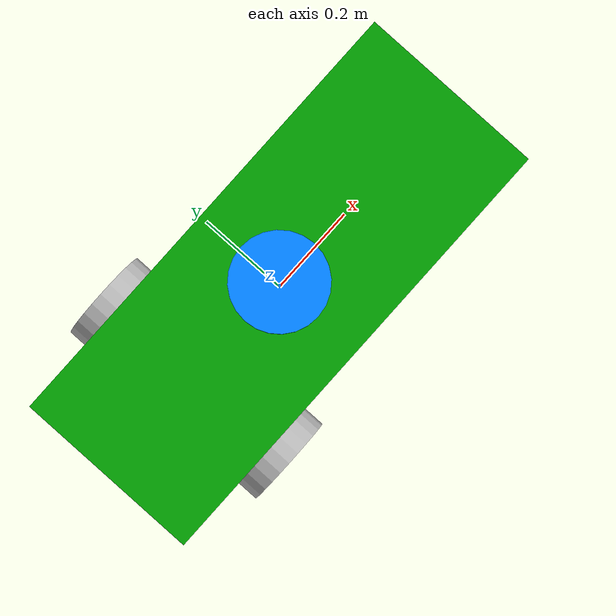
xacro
<?xml version="1.0"?>
<robot name="my_robot" xmlns:xacro="http://www.ros.org/wiki/xacro">

    <xacro:property name="base_length" value="1.0" />

    <material name="grey">
        <color rgba="0.7 0.7 0.7 1.0"/>
    </material>
    <material name="blue">
        <color rgba="0.0 0.5 1.0 1.0"/>
    </material>
    <material name="green">
        <color rgba="0.0 0.6 0.0 1.0"/>
    </material>
    <material name="white">
        <color rgba="1.0 1.0 1.0 1.0"/>
    </material>

    <link name="base_footprint">
    </link>

    <link name ="base_link">
        <visual>
            <geometry>
                <box size="${base_length} 0.4 0.2"/>
            </geometry>
            <origin xyz="0.0 0.0 0.1" rpy="0.0 0.0 0.0"/>
            <material name="green"/>
        </visual>
    </link>

    <link name="lidar">
        <visual>
            <geometry>
                <cylinder radius="0.1" length="0.05"/>
            </geometry>
            <origin xyz="0.0 0.0 0.0" rpy="0.0 0.0 0.0"/>
            <material name="blue"/>
        </visual>
    </link>

    <link name="left_wheel">
        <visual>
            <origin xyz="0.0 0.0 0.0" rpy="${pi / 2} 0.0 0.0"/>
            <geometry>
                <cylinder radius="0.1" length="0.05"/>
            </geometry>
            <material name="grey"/>
        </visual>
    </link>

    <link name="right_wheel">
        <visual>
            <origin xyz="0.0 0.0 0.0" rpy="${pi / 2.0} 0.0 0.0"/>
            <geometry>
                <cylinder radius="0.1" length="0.05"/>
            </geometry>
            <material name="grey"/>
        </visual>
    </link>

    <link name="caster_wheel">
        <visual>
            <origin xyz="0.0 0.0 0.0" rpy="0.0 0.0 0.0"/>
            <geometry>
                <sphere radius="0.05"/>
            </geometry>
            <material name="grey"/>
        </visual>
    </link>

    <joint name="base_lidar_joint" type="fixed">
        <parent link="base_link"/>
        <child link="lidar"/>
        <origin xyz="0.0 0.0 0.225" rpy="0.0 0.0 0.0"/>
    </joint>

    <joint name="base_left_wheel_joint" type="continuous">
        <origin xyz="${-base_length / 4.0} 0.225 0.0" rpy="0.0 0.0 0.0"/>
        <parent link="base_link"/>
        <child link="left_wheel"/>
        <axis xyz="0.0 1.0 0.0"/>
    </joint>

    <joint name="base_right_wheel_joint" type="continuous">
        <origin xyz="${-base_length / 4.0} -0.225 0.0" rpy="0.0 0.0 0.0"/>
        <parent link="base_link"/>
        <child link="right_wheel"/>
        <axis xyz="0.0 1.0 0.0"/>
    </joint>

    <joint name="base_caster_wheel_joint" type="fixed">
        <origin xyz="${base_length / 3.0} 0.0 -0.05" rpy="0.0 0.0 0.0"/>
        <parent link="base_link"/>
        <child link="caster_wheel"/>
    </joint>

    <joint name="base_joint" type="fixed">
        <parent link="base_footprint"/>
        <child link="base_link"/>
        <origin xyz="0.0 0.0 0.1" rpy="0.0 0.0 0.0"/>
    </joint>

</robot>
